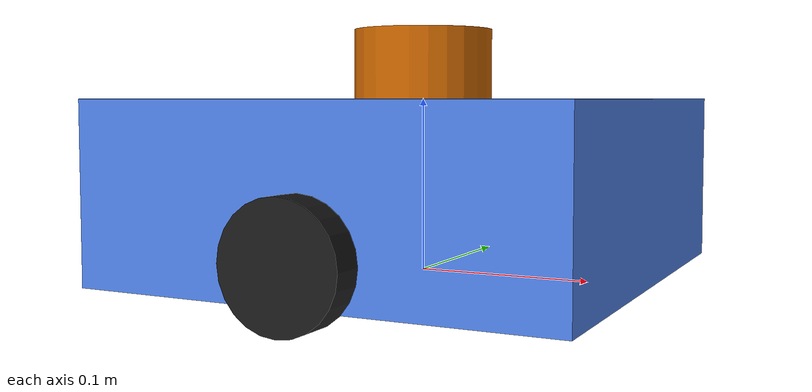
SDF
<?xml version="1.0" ?>
<sdf version="1.8">
  <model name="turtlebot3">
    <pose>0 0 0.05 0 0 0</pose>

    <link name="base_link">
      <inertial>
        <mass>1.3</mass>
        <inertia><ixx>0.008</ixx><iyy>0.008</iyy><izz>0.008</izz></inertia>
      </inertial>
      <visual name="body">
        <geometry><box><size>0.27 0.27 0.1</size></box></geometry>
        <material>
          <ambient>0.2 0.4 0.8 1</ambient>
          <diffuse>0.3 0.5 0.9 1</diffuse>
        </material>
      </visual>
      <collision name="body_c">
        <geometry><box><size>0.27 0.27 0.1</size></box></geometry>
      </collision>
    </link>

    <link name="left_wheel">
      <pose>0 0.144 -0.027 -1.5707 0 0</pose>
      <inertial>
        <mass>0.05</mass>
        <inertia><ixx>0.0001</ixx><iyy>0.0001</iyy><izz>0.0001</izz></inertia>
      </inertial>
      <visual name="v">
        <geometry><cylinder><radius>0.033</radius><length>0.018</length></cylinder></geometry>
        <material><ambient>0.1 0.1 0.1 1</ambient></material>
      </visual>
      <collision name="c">
        <geometry><cylinder><radius>0.033</radius><length>0.018</length></cylinder></geometry>
        <surface><friction><ode><mu>1.0</mu><mu2>1.0</mu2></ode></friction></surface>
      </collision>
    </link>

    <link name="right_wheel">
      <pose>0 -0.144 -0.027 -1.5707 0 0</pose>
      <inertial>
        <mass>0.05</mass>
        <inertia><ixx>0.0001</ixx><iyy>0.0001</iyy><izz>0.0001</izz></inertia>
      </inertial>
      <visual name="v">
        <geometry><cylinder><radius>0.033</radius><length>0.018</length></cylinder></geometry>
        <material><ambient>0.1 0.1 0.1 1</ambient></material>
      </visual>
      <collision name="c">
        <geometry><cylinder><radius>0.033</radius><length>0.018</length></cylinder></geometry>
        <surface><friction><ode><mu>1.0</mu><mu2>1.0</mu2></ode></friction></surface>
      </collision>
    </link>

    <link name="caster_back">
      <pose>-0.13 0 -0.045 0 0 0</pose>
      <inertial>
        <mass>0.005</mass>
        <inertia><ixx>0.00001</ixx><iyy>0.00001</iyy><izz>0.00001</izz></inertia>
      </inertial>
      <visual name="v">
        <geometry><sphere><radius>0.015</radius></sphere></geometry>
        <material><ambient>0.3 0.3 0.3 1</ambient></material>
      </visual>
      <collision name="c">
        <geometry><sphere><radius>0.015</radius></sphere></geometry>
        <surface><friction><ode><mu>0.0</mu><mu2>0.0</mu2></ode></friction></surface>
      </collision>
    </link>

    <link name="lidar_link">
      <pose>0 0 0.07 0 0 0</pose>
      <inertial>
        <mass>0.114</mass>
        <inertia><ixx>0.0001</ixx><iyy>0.0001</iyy><izz>0.0001</izz></inertia>
      </inertial>
      <visual name="v">
        <geometry><cylinder><radius>0.04</radius><length>0.04</length></cylinder></geometry>
        <material><ambient>0.8 0.4 0.0 1</ambient></material>
      </visual>
      <sensor name="lidar" type="gpu_lidar">
        <topic>scan</topic>
        <update_rate>10</update_rate>
        <ray>
          <scan>
            <horizontal>
              <samples>360</samples><resolution>1</resolution>
              <min_angle>-3.14159</min_angle><max_angle>3.14159</max_angle>
            </horizontal>
          </scan>
          <range><min>0.12</min><max>3.5</max><resolution>0.015</resolution></range>
        </ray>
        <always_on>1</always_on>
        <visualize>true</visualize>
        <gz_frame_id>lidar_link</gz_frame_id>
      </sensor>
    </link>

    <joint name="left_wheel_joint" type="revolute">
      <parent>base_link</parent>
      <child>left_wheel</child>
      <axis><xyz>0 1 0</xyz></axis>
    </joint>
    <joint name="right_wheel_joint" type="revolute">
      <parent>base_link</parent>
      <child>right_wheel</child>
      <axis><xyz>0 1 0</xyz></axis>
    </joint>
    <joint name="caster_back_joint" type="ball">
      <parent>base_link</parent>
      <child>caster_back</child>
    </joint>
    <joint name="lidar_joint" type="fixed">
      <parent>base_link</parent>
      <child>lidar_link</child>
    </joint>

    <plugin filename="ignition-gazebo-diff-drive-system" name="ignition::gazebo::systems::DiffDrive">
      <left_joint>left_wheel_joint</left_joint>
      <right_joint>right_wheel_joint</right_joint>
      <wheel_separation>0.288</wheel_separation>
      <wheel_radius>0.033</wheel_radius>
      <topic>cmd_vel</topic>
      <odom_topic>odom</odom_topic>
      <frame_id>odom</frame_id>
      <child_frame_id>base_link</child_frame_id>
      <odom_publish_frequency>30</odom_publish_frequency>
    </plugin>

    <plugin filename="ignition-gazebo-joint-state-publisher-system" name="ignition::gazebo::systems::JointStatePublisher">
      <topic>joint_states</topic>
    </plugin>
  </model>
</sdf>
